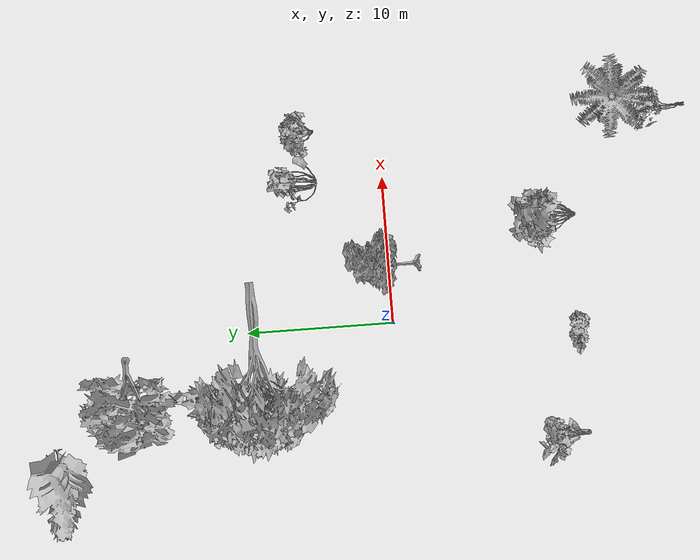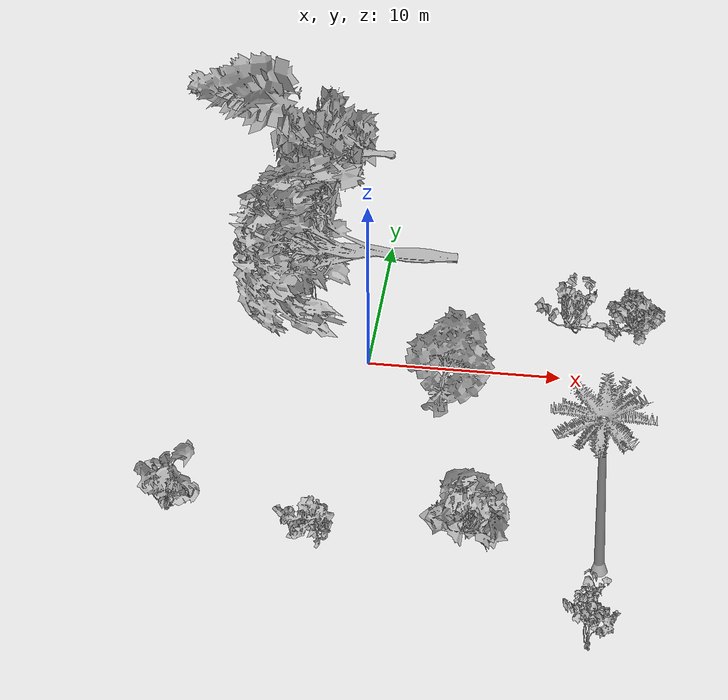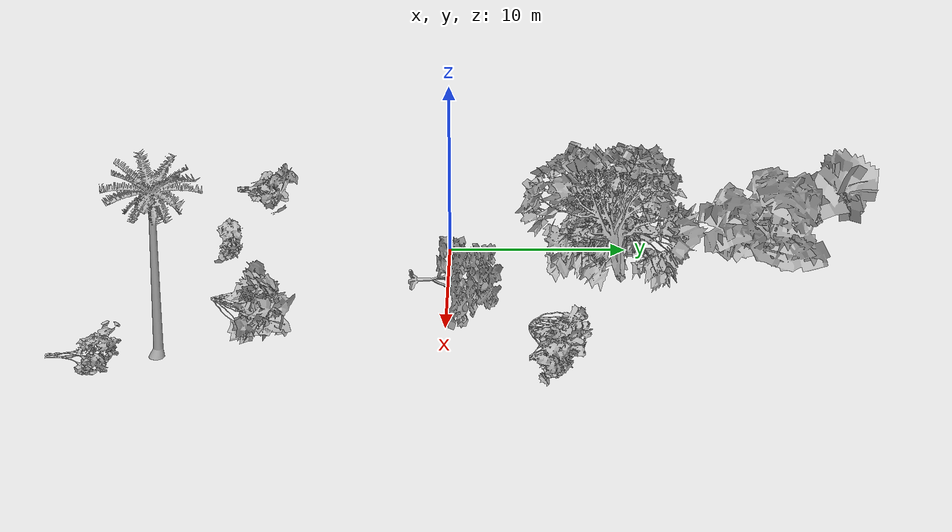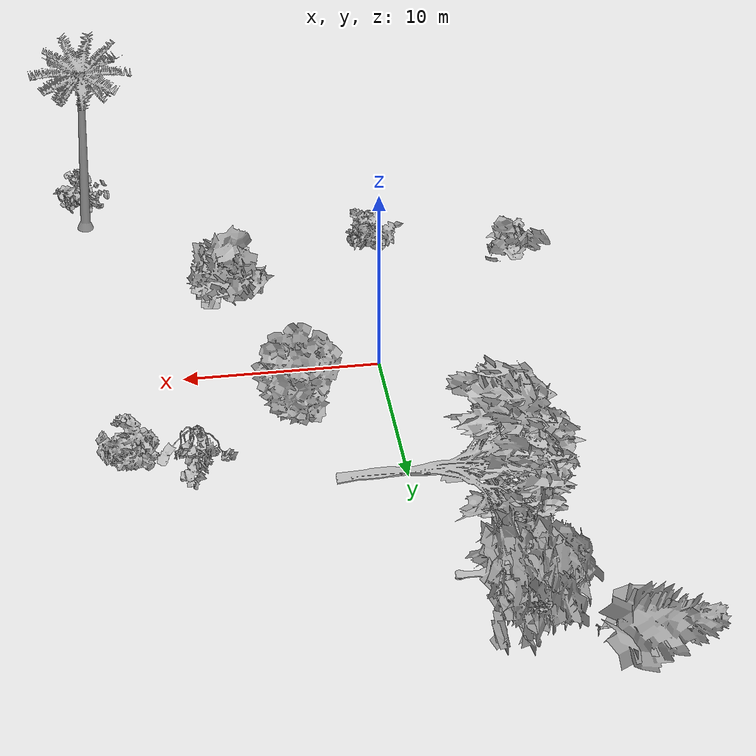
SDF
<sdf version="1.7">
 <world name="outdoors">
  <physics type="ode"><max_step_size>0.003</max_step_size><real_time_factor>1.0</real_time_factor></physics>
  <plugin name="ignition::gazebo::systems::Physics" filename="libignition-gazebo-physics-system.so"/>
  <plugin name="ignition::gazebo::systems::UserCommands" filename="libignition-gazebo-user-commands-system.so"/>
  <plugin name="ignition::gazebo::systems::SceneBroadcaster" filename="libignition-gazebo-scene-broadcaster-system.so"/>
  <plugin name="ignition::gazebo::systems::Sensors" filename="libignition-gazebo-sensors-system.so">
   <render_engine>ogre2</render_engine>
  </plugin>
  <plugin name="ignition::gazebo::systems::Imu" filename="libignition-gazebo-imu-system.so"/>
  <plugin name="ignition::gazebo::systems::NavSat" filename="libignition-gazebo-navsat-system.so"/>
  <scene>
   <ambient>1 1 1 1</ambient>
   <background>0.3 0.7 0.9 1</background>
   <shadows>0</shadows>
   <grid>true</grid>
  </scene>
  <spherical_coordinates>
   <surface_model>EARTH_WGS84</surface_model>
   <world_frame_orientation>ENU</world_frame_orientation>
   <latitude_deg>-22.986687</latitude_deg>
   <longitude_deg>-43.202501</longitude_deg>
   <elevation>0</elevation>
   <heading_deg>0</heading_deg>
  </spherical_coordinates>
  <light type="directional" name="sun">
   <cast_shadows>0</cast_shadows>
   <pose>-5 -3 10 0 0 0</pose>
   <diffuse>1 1 1 1</diffuse>
   <specular>1 1 1 1</specular>
   <direction>0 0 -1</direction>
  </light>
  <model name="ground_plane">
   <static>true</static>
   <link name="link">
    <collision name="collision">
     <geometry><plane><normal>0.0 0.0 1</normal><size>1 1</size></plane></geometry>
    </collision>
   </link>
  </model>
  <include>
   <uri>model://gazebo_vegetation/models/bush_0</uri>
   <name>bush_0</name>
   <pose>-8.5 -13 0 0 -0 0</pose>
  </include>
  <include>
   <uri>model://gazebo_vegetation/models/bush_1</uri>
   <name>bush_1</name>
   <pose>6.5 -13 0 0 -0 0</pose>
  </include>
  <include>
   <uri>model://gazebo_vegetation/models/bush_2</uri>
   <name>bush_2</name>
   <pose>-1.5 -13 0 0 -0 0</pose>
  </include>
  <include>
   <uri>model://gazebo_vegetation/models/bush_3</uri>
   <name>bush_3</name>
   <pose>13.5 4.5 0 0 -0 0</pose>
  </include>
  <include>
   <uri>model://gazebo_vegetation/models/bush_4</uri>
   <name>bush_4</name>
   <pose>10 4.5 0 0 -0 0</pose>
  </include>
  <include>
   <uri>model://gazebo_vegetation/models/bush_5</uri>
   <name>bush_5</name>
   <pose>13.5 -21 0 0 -0 0</pose>
  </include>
  <include>
   <uri>model://gazebo_vegetation/models/palm_tree</uri>
   <name>palm_tree</name>
   <pose>13.5 -15 0 0 -0 0</pose>
  </include>
  <include>
   <uri>model://gazebo_vegetation/models/tree_1</uri>
   <name>tree_1</name>
   <pose>4 -2 0 0 -0 0</pose>
  </include>
  <include>
   <uri>model://gazebo_vegetation/models/tree_2</uri>
   <name>tree_2</name>
   <pose>3.5 9.5 0 0 0 1.57</pose>
  </include>
  <include>
   <uri>model://gazebo_vegetation/models/tree_3</uri>
   <name>tree_3</name>
   <pose>-1.3 18.5 0 0 0 1.57</pose>
  </include>
  <include>
   <uri>model://gazebo_vegetation/models/tree_5</uri>
   <name>tree_5</name>
   <pose>-7 23.6 0 0 -0 1.57</pose>
  </include>
  <include>
   <uri>model://gazebo_vegetation/models/tree_6</uri>
   <name>tree_6</name>
   <pose>-4 21.5 0 0 -0 1.57</pose>
  </include>
 </world>
</sdf>

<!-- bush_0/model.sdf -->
<sdf version="1.5">
  <model name="Bush 0">
    <static>true</static>
    <pose frame=''>0 0 0 1.57079 0 0</pose>
    <link name="link">
      <pose frame=''>0 0 0 0 0 0</pose>
      <collision name="collision">
        <geometry>
          <mesh>
            <scale>5 5 5</scale>
            <uri>model://gazebo_vegetation/models/bush_0/meshes/bush_0.obj</uri>
          </mesh>
        </geometry>
      </collision>
      <visual name="visual">
        <geometry>
          <mesh>

            <scale>5 5 5</scale>
            <uri>model://gazebo_vegetation/models/bush_0/meshes/bush_0.obj</uri>
          </mesh>
        </geometry>
      </visual>
    </link>
  </model>
</sdf>

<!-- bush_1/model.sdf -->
<sdf version="1.5">
  <model name="Bush 1">
    <static>true</static>
    <pose frame=''>0 0 0 1.57079 0 0</pose>
    <link name="link">
      <pose frame=''>0 0 0 0 0 0</pose>
      <collision name="collision">
        <geometry>
          <mesh>
            <scale>5 5 5</scale>
            <uri>model://gazebo_vegetation/models/bush_1/meshes/bush_1.obj</uri>
          </mesh>
        </geometry>
      </collision>
      <visual name="visual">
        <geometry>
          <mesh>

            <scale>5 5 5</scale>
            <uri>model://gazebo_vegetation/models/bush_1/meshes/bush_1.obj</uri>
          </mesh>
        </geometry>
      </visual>
    </link>
  </model>
</sdf>

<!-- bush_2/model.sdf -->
<sdf version="1.5">
  <model name="Bush 2">
    <static>true</static>
    <pose frame=''>0 0 0 1.57079 0 0</pose>
    <link name="link">
      <pose frame=''>0 0 0 0 0 0</pose>
      <collision name="collision">
        <geometry>
          <mesh>
            <scale>5 5 5</scale>
            <uri>model://gazebo_vegetation/models/bush_2/meshes/bush_2.obj</uri>
          </mesh>
        </geometry>
      </collision>
      <visual name="visual">
        <geometry>
          <mesh>

            <scale>5 5 5</scale>
            <uri>model://gazebo_vegetation/models/bush_2/meshes/bush_2.obj</uri>
          </mesh>
        </geometry>
      </visual>
    </link>
  </model>
</sdf>

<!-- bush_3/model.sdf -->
<sdf version="1.5">
  <model name="Bush 3">
    <static>true</static>
    <pose frame=''>0 0 0 1.57079 0 0</pose>
    <link name="link">
      <pose frame=''>0 0 0 0 0 0</pose>
      <collision name="collision">
        <geometry>
          <mesh>
            <scale>5 5 5</scale>
            <uri>model://gazebo_vegetation/models/bush_3/meshes/bush_3.obj</uri>
          </mesh>
        </geometry>
      </collision>
      <visual name="visual">
        <geometry>
          <mesh>

            <scale>5 5 5</scale>
            <uri>model://gazebo_vegetation/models/bush_3/meshes/bush_3.obj</uri>
          </mesh>
        </geometry>
      </visual>
    </link>
  </model>
</sdf>

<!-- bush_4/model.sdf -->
<sdf version="1.5">
  <model name="Bush 4">
    <static>true</static>
    <pose frame=''>0 0 0 1.57079 0 0</pose>
    <link name="link">
      <pose frame=''>0 0 0 0 0 0</pose>
      <collision name="collision">
        <geometry>
          <mesh>
            <scale>5 5 5</scale>
            <uri>model://gazebo_vegetation/models/bush_4/meshes/bush_4.obj</uri>
          </mesh>
        </geometry>
      </collision>
      <visual name="visual">
        <geometry>
          <mesh>

            <scale>5 5 5</scale>
            <uri>model://gazebo_vegetation/models/bush_4/meshes/bush_4.obj</uri>
          </mesh>
        </geometry>
      </visual>
    </link>
  </model>
</sdf>

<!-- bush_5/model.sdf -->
<sdf version="1.5">
  <model name="Bush 5">
    <static>true</static>
    <pose frame=''>0 0 0 1.57079 0 0</pose>
    <link name="link">
      <pose frame=''>0 0 0 0 0 0</pose>
      <collision name="collision">
        <geometry>
          <mesh>
            <scale>5 5 5</scale>
            <uri>model://gazebo_vegetation/models/bush_5/meshes/bush_5.obj</uri>
          </mesh>
        </geometry>
      </collision>
      <visual name="visual">
        <geometry>
          <mesh>

            <scale>5 5 5</scale>
            <uri>model://gazebo_vegetation/models/bush_5/meshes/bush_5.obj</uri>
          </mesh>
        </geometry>
      </visual>
    </link>
  </model>
</sdf>

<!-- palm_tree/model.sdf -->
<sdf version="1.5">
  <model name="Palm Tree">
    <static>true</static>
    <link name="link">
      <collision name="collision">
        <geometry>
          <mesh>
            <scale>0.02 0.02 0.02</scale>
            <uri>model://gazebo_vegetation/models/palm_tree/meshes/palm_tree.dae</uri>
          </mesh>
        </geometry>
      </collision>
      <visual name="visual">
        <geometry>
          <mesh>

            <scale>0.02 0.02 0.02</scale>
            <uri>model://gazebo_vegetation/models/palm_tree/meshes/palm_tree.dae</uri>
          </mesh>
        </geometry>
      </visual>
    </link>
  </model>
</sdf>

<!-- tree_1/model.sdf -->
<sdf version="1.5">
  <model name="Tree 1">
    <static>true</static>
    <pose frame=''>0 0 0 1.57079 0 0</pose>
    <link name="link">
      <pose frame=''>0 0 0 0 0 0</pose>
      <collision name="collision">
        <geometry>
          <mesh>
            <scale>5 5 5</scale>
            <uri>model://gazebo_vegetation/models/tree_1/meshes/tree_1.obj</uri>
          </mesh>
        </geometry>
      </collision>
      <visual name="visual">
        <geometry>
          <mesh>

            <scale>5 5 5</scale>
            <uri>model://gazebo_vegetation/models/tree_1/meshes/tree_1.obj</uri>
          </mesh>
        </geometry>
      </visual>
    </link>
  </model>
</sdf>

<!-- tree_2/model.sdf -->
<sdf version="1.5">
  <model name="Tree 2">
    <static>true</static>
    <pose frame=''>0 0 0 1.57079 0 0</pose>
    <link name="link">
      <pose frame=''>0 0 0 0 0 0</pose>
      <collision name="collision">
        <geometry>
          <mesh>
            <scale>5 5 5</scale>
            <uri>model://gazebo_vegetation/models/tree_2/meshes/tree_2.obj</uri>
          </mesh>
        </geometry>
      </collision>
      <visual name="visual">
        <geometry>
          <mesh>

            <scale>5 5 5</scale>
            <uri>model://gazebo_vegetation/models/tree_2/meshes/tree_2.obj</uri>
          </mesh>
        </geometry>
      </visual>
    </link>
  </model>
</sdf>

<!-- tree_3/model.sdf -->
<sdf version="1.5">
  <model name="Tree 3">
     <static>true</static>
    <pose frame=''>0 0 0 1.57079 0 0</pose>
    <link name="link">
      <pose frame=''>0 0 0 0 0 0</pose>
      <collision name="collision">
        <geometry>
          <mesh>
            <scale>5 5 5</scale>
            <uri>model://tree_3/meshes/tree_3.obj</uri>
          </mesh>
        </geometry>
      </collision>
      <visual name="visual">
        <geometry>
          <mesh>

            <scale>5 5 5</scale>
            <uri>model://tree_3/meshes/tree_3.obj</uri>
          </mesh>
        </geometry>
      </visual>
    </link>
  </model>
</sdf>

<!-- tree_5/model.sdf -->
<sdf version="1.5">
  <model name="Tree 5">
     <static>true</static>
    <pose frame=''>0 0 0 1.57079 0 0</pose>
    <link name="link">
      <pose frame=''>0 0 0 0 0 0</pose>
      <collision name="collision">
        <geometry>
          <mesh>
            <scale>5 5 5</scale>
            <uri>model://tree_5/meshes/tree.obj</uri>
          </mesh>
        </geometry>
      </collision>
      <visual name="visual">
        <geometry>
          <mesh>

            <scale>5 5 5</scale>
            <uri>model://tree_5/meshes/tree.obj</uri>
          </mesh>
        </geometry>
      </visual>
    </link>
  </model>
</sdf>

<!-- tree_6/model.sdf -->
<sdf version="1.5">
  <model name="Oak tree">
     <static>true</static>
    <pose frame=''>0 0 0 1.57079 0 0</pose>
    <link name="link">
      <pose frame=''>0 0 0 0 0 0</pose>
      <collision name="collision">
        <geometry>
          <mesh>
            <scale>5 5 5</scale>
            <uri>model://tree_6/meshes/tree.obj</uri>
          </mesh>
        </geometry>
      </collision>
      <visual name="visual">
        <geometry>
          <mesh>

            <scale>5 5 5</scale>
            <uri>model://tree_6/meshes/tree.obj</uri>
          </mesh>
        </geometry>
      </visual>
    </link>
  </model>
</sdf>
